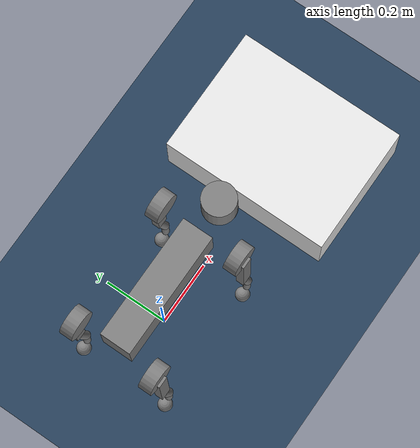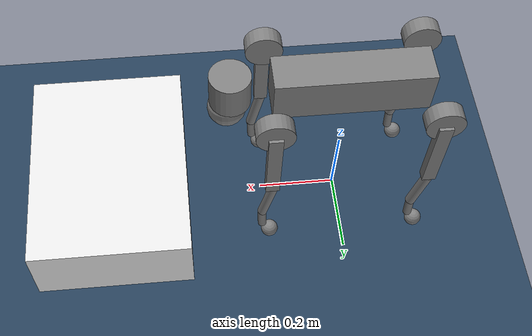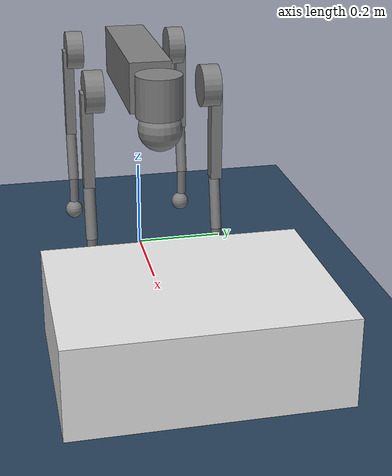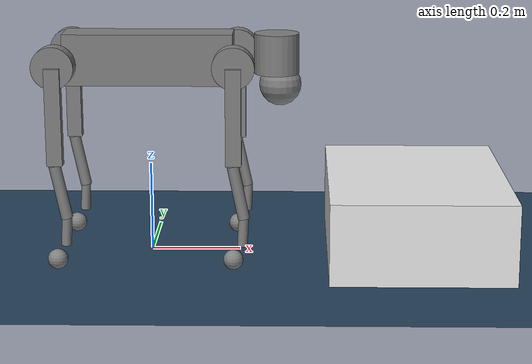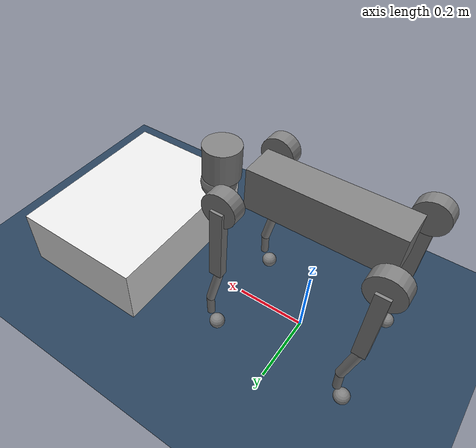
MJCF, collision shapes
<mujoco model="go2 scene">
  <compiler angle="radian" meshdir="assets/"/>

  <option impratio="100" cone="elliptic"/>

  <size nkey="1"/>

  <visual>
    <global azimuth="-130" elevation="-20"/>
    <headlight ambient="0.3 0.3 0.3" diffuse="0.6 0.6 0.6" specular="0 0 0"/>
    <rgba haze="0.15 0.25 0.35 1"/>
  </visual>

  <statistic extent="0.8" center="0 0 0.1"/>

  <default>
    <default class="go2">
      <joint armature="0.01" damping="2" frictionloss="0.2"/>
      <geom condim="1" friction="0.6" margin="0.001"/>
      <general ctrlrange="-23.7 23.7"/>
      <default class="abduction">
        <joint range="-1.0472 1.0472"/>
      </default>
      <default class="hip">
        <default class="front_hip">
          <joint range="-1.5708 3.4907"/>
        </default>
        <default class="back_hip">
          <joint range="-0.5236 4.5379"/>
        </default>
      </default>
      <default class="knee">
        <joint range="-2.7227 -0.83776"/>
        <general ctrlrange="-45.43 45.43"/>
      </default>
      <default class="visual">
        <geom type="mesh" contype="0" conaffinity="0" group="2"/>
      </default>
      <default class="collision">
        <geom group="3"/>
        <default class="foot">
          <geom size="0.022 0 0" condim="6" priority="1" friction="0.8 0.02 0.01" solimp="0.015 1 0.022"/>
        </default>
      </default>
    </default>
  </default>

  <asset>
    <texture type="skybox" builtin="gradient" rgb1="0.3 0.5 0.7" rgb2="0 0 0" width="512" height="3072"/>
    <texture type="2d" name="groundplane" builtin="checker" mark="edge" rgb1="0.2 0.3 0.4" rgb2="0.1 0.2 0.3" markrgb="0.8 0.8 0.8" width="300" height="300"/>
    <material name="metal" rgba="0.9 0.95 0.95 1"/>
    <material name="black" rgba="0 0 0 1"/>
    <material name="white"/>
    <material name="gray" rgba="0.671705 0.692426 0.77427 1"/>
    <material name="groundplane" texture="groundplane" texuniform="true" texrepeat="5 5" reflectance="0.2"/>
    <mesh name="base_0" file="base_0.obj"/>
    <mesh name="base_1" file="base_1.obj"/>
    <mesh name="base_2" file="base_2.obj"/>
    <mesh name="base_3" file="base_3.obj"/>
    <mesh name="base_4" file="base_4.obj"/>
    <mesh name="hip_0" file="hip_0.obj"/>
    <mesh name="hip_1" file="hip_1.obj"/>
    <mesh name="thigh_0" file="thigh_0.obj"/>
    <mesh name="thigh_1" file="thigh_1.obj"/>
    <mesh name="thigh_mirror_0" file="thigh_mirror_0.obj"/>
    <mesh name="thigh_mirror_1" file="thigh_mirror_1.obj"/>
    <mesh name="calf_0" file="calf_0.obj"/>
    <mesh name="calf_1" file="calf_1.obj"/>
    <mesh name="calf_mirror_0" file="calf_mirror_0.obj"/>
    <mesh name="calf_mirror_1" file="calf_mirror_1.obj"/>
    <mesh name="foot" file="foot.obj"/>
  </asset>

  <worldbody>
    <geom name="floor" size="0 0 0.05" type="plane" material="groundplane"/>
    <light pos="0 0 1.5" dir="0 0 -1" directional="true"/>
    <body name="base" childclass="go2" pos="0 0 0.445">
      <inertial pos="0.021112 0 -0.005366" quat="-0.000543471 0.713435 -0.00173769 0.700719" mass="6.921" diaginertia="0.107027 0.0980771 0.0244531"/>
      <joint type="free" limited="false" actuatorfrclimited="false" armature="0" damping="0" frictionloss="0"/>
      <geom class="visual" material="black" mesh="base_0"/>
      <geom class="visual" material="black" mesh="base_1"/>
      <geom class="visual" material="black" mesh="base_2"/>
      <geom class="visual" material="white" mesh="base_3"/>
      <geom class="visual" material="gray" mesh="base_4"/>
      <geom class="collision" size="0.1881 0.04675 0.057" type="box"/>
      <geom class="collision" size="0.05 0.045" pos="0.285 0 0.01" type="cylinder"/>
      <geom class="collision" size="0.047" pos="0.293 0 -0.06"/>
      <site name="imu" pos="-0.02557 0 0.04232"/>
      <body name="FL_hip" pos="0.1934 0.0465 0">
        <inertial pos="-0.0054 0.00194 -0.000105" quat="0.497014 0.499245 0.505462 0.498237" mass="0.678" diaginertia="0.00088403 0.000596003 0.000479967"/>
        <joint name="FL_hip_joint" class="abduction" pos="0 0 0" axis="1 0 0"/>
        <geom class="visual" material="metal" mesh="hip_0"/>
        <geom class="visual" material="gray" mesh="hip_1"/>
        <geom class="collision" size="0.046 0.02" pos="0 0.08 0" quat="0.707107 0.707107 0 0" type="cylinder"/>
        <body name="FL_thigh" pos="0 0.0955 0">
          <inertial pos="-0.00374 -0.0223 -0.0327" quat="0.829533 0.0847635 -0.0200632 0.551623" mass="1.152" diaginertia="0.00594973 0.00584149 0.000878787"/>
          <joint name="FL_thigh_joint" class="front_hip" pos="0 0 0" axis="0 1 0"/>
          <geom class="visual" material="metal" mesh="thigh_0"/>
          <geom class="visual" material="gray" mesh="thigh_1"/>
          <geom class="collision" size="0.1065 0.01225 0.017" pos="0 0 -0.1065" quat="0.707107 0 0.707107 0" type="box"/>
          <body name="FL_calf" pos="0 0 -0.213">
            <inertial pos="0.00629595 -0.000622121 -0.141417" quat="0.710672 0.00154099 -0.00450087 0.703508" mass="0.241352" diaginertia="0.0014901 0.00146356 5.31397e-05"/>
            <joint name="FL_calf_joint" class="knee" pos="0 0 0" axis="0 1 0"/>
            <geom class="visual" material="gray" mesh="calf_0"/>
            <geom class="visual" material="black" mesh="calf_1"/>
            <geom class="collision" size="0.012 0.06" pos="0.008 0 -0.06" quat="0.994493 0 -0.104807 0" type="cylinder"/>
            <geom class="collision" size="0.011 0.0325" pos="0.02 0 -0.148" quat="0.999688 0 0.0249974 0" type="cylinder"/>
            <geom class="visual" pos="0 0 -0.213" quat="1 0 0 0" material="black" mesh="foot"/>
            <geom name="FL" class="foot" pos="-0.002 0 -0.213"/>
          </body>
        </body>
      </body>
      <body name="FR_hip" pos="0.1934 -0.0465 0">
        <inertial pos="-0.0054 -0.00194 -0.000105" quat="0.498237 0.505462 0.499245 0.497014" mass="0.678" diaginertia="0.00088403 0.000596003 0.000479967"/>
        <joint name="FR_hip_joint" class="abduction" pos="0 0 0" axis="1 0 0"/>
        <geom class="visual" quat="4.63268e-05 1 0 0" material="metal" mesh="hip_0"/>
        <geom class="visual" quat="4.63268e-05 1 0 0" material="gray" mesh="hip_1"/>
        <geom class="collision" size="0.046 0.02" pos="0 -0.08 0" quat="0.707107 0.707107 0 0" type="cylinder"/>
        <body name="FR_thigh" pos="0 -0.0955 0">
          <inertial pos="-0.00374 0.0223 -0.0327" quat="0.551623 -0.0200632 0.0847635 0.829533" mass="1.152" diaginertia="0.00594973 0.00584149 0.000878787"/>
          <joint name="FR_thigh_joint" class="front_hip" pos="0 0 0" axis="0 1 0"/>
          <geom class="visual" material="metal" mesh="thigh_mirror_0"/>
          <geom class="visual" material="gray" mesh="thigh_mirror_1"/>
          <geom class="collision" size="0.1065 0.01225 0.017" pos="0 0 -0.1065" quat="0.707107 0 0.707107 0" type="box"/>
          <body name="FR_calf" pos="0 0 -0.213">
            <inertial pos="0.00629595 0.000622121 -0.141417" quat="0.703508 -0.00450087 0.00154099 0.710672" mass="0.241352" diaginertia="0.0014901 0.00146356 5.31397e-05"/>
            <joint name="FR_calf_joint" class="knee" pos="0 0 0" axis="0 1 0"/>
            <geom class="visual" material="gray" mesh="calf_mirror_0"/>
            <geom class="visual" material="black" mesh="calf_mirror_1"/>
            <geom class="collision" size="0.013 0.06" pos="0.01 0 -0.06" quat="0.995004 0 -0.0998334 0" type="cylinder"/>
            <geom class="collision" size="0.011 0.0325" pos="0.02 0 -0.148" quat="0.999688 0 0.0249974 0" type="cylinder"/>
            <geom class="visual" pos="0 0 -0.213" quat="1 0 0 0" material="black" mesh="foot"/>
            <geom name="FR" class="foot" pos="-0.002 0 -0.213"/>
          </body>
        </body>
      </body>
      <body name="RL_hip" pos="-0.1934 0.0465 0">
        <inertial pos="0.0054 0.00194 -0.000105" quat="0.505462 0.498237 0.497014 0.499245" mass="0.678" diaginertia="0.00088403 0.000596003 0.000479967"/>
        <joint name="RL_hip_joint" class="abduction" pos="0 0 0" axis="1 0 0"/>
        <geom class="visual" quat="4.63268e-05 0 1 0" material="metal" mesh="hip_0"/>
        <geom class="visual" quat="4.63268e-05 0 1 0" material="gray" mesh="hip_1"/>
        <geom class="collision" size="0.046 0.02" pos="0 0.08 0" quat="0.707107 0.707107 0 0" type="cylinder"/>
        <body name="RL_thigh" pos="0 0.0955 0">
          <inertial pos="-0.00374 -0.0223 -0.0327" quat="0.829533 0.0847635 -0.0200632 0.551623" mass="1.152" diaginertia="0.00594973 0.00584149 0.000878787"/>
          <joint name="RL_thigh_joint" class="back_hip" pos="0 0 0" axis="0 1 0"/>
          <geom class="visual" material="metal" mesh="thigh_0"/>
          <geom class="visual" material="gray" mesh="thigh_1"/>
          <geom class="collision" size="0.1065 0.01225 0.017" pos="0 0 -0.1065" quat="0.707107 0 0.707107 0" type="box"/>
          <body name="RL_calf" pos="0 0 -0.213">
            <inertial pos="0.00629595 -0.000622121 -0.141417" quat="0.710672 0.00154099 -0.00450087 0.703508" mass="0.241352" diaginertia="0.0014901 0.00146356 5.31397e-05"/>
            <joint name="RL_calf_joint" class="knee" pos="0 0 0" axis="0 1 0"/>
            <geom class="visual" material="gray" mesh="calf_0"/>
            <geom class="visual" material="black" mesh="calf_1"/>
            <geom class="collision" size="0.013 0.06" pos="0.01 0 -0.06" quat="0.995004 0 -0.0998334 0" type="cylinder"/>
            <geom class="collision" size="0.011 0.0325" pos="0.02 0 -0.148" quat="0.999688 0 0.0249974 0" type="cylinder"/>
            <geom class="visual" pos="0 0 -0.213" quat="1 0 0 0" material="black" mesh="foot"/>
            <geom name="RL" class="foot" pos="-0.002 0 -0.213"/>
          </body>
        </body>
      </body>
      <body name="RR_hip" pos="-0.1934 -0.0465 0">
        <inertial pos="0.0054 -0.00194 -0.000105" quat="0.499245 0.497014 0.498237 0.505462" mass="0.678" diaginertia="0.00088403 0.000596003 0.000479967"/>
        <joint name="RR_hip_joint" class="abduction" pos="0 0 0" axis="1 0 0"/>
        <geom class="visual" quat="2.14617e-09 4.63268e-05 4.63268e-05 -1" material="metal" mesh="hip_0"/>
        <geom class="visual" quat="2.14617e-09 4.63268e-05 4.63268e-05 -1" material="gray" mesh="hip_1"/>
        <geom class="collision" size="0.046 0.02" pos="0 -0.08 0" quat="0.707107 0.707107 0 0" type="cylinder"/>
        <body name="RR_thigh" pos="0 -0.0955 0">
          <inertial pos="-0.00374 0.0223 -0.0327" quat="0.551623 -0.0200632 0.0847635 0.829533" mass="1.152" diaginertia="0.00594973 0.00584149 0.000878787"/>
          <joint name="RR_thigh_joint" class="back_hip" pos="0 0 0" axis="0 1 0"/>
          <geom class="visual" material="metal" mesh="thigh_mirror_0"/>
          <geom class="visual" material="gray" mesh="thigh_mirror_1"/>
          <geom class="collision" size="0.1065 0.01225 0.017" pos="0 0 -0.1065" quat="0.707107 0 0.707107 0" type="box"/>
          <body name="RR_calf" pos="0 0 -0.213">
            <inertial pos="0.00629595 0.000622121 -0.141417" quat="0.703508 -0.00450087 0.00154099 0.710672" mass="0.241352" diaginertia="0.0014901 0.00146356 5.31397e-05"/>
            <joint name="RR_calf_joint" class="knee" pos="0 0 0" axis="0 1 0"/>
            <geom class="visual" material="gray" mesh="calf_mirror_0"/>
            <geom class="visual" material="black" mesh="calf_mirror_1"/>
            <geom class="collision" size="0.013 0.06" pos="0.01 0 -0.06" quat="0.995004 0 -0.0998334 0" type="cylinder"/>
            <geom class="collision" size="0.011 0.0325" pos="0.02 0 -0.148" quat="0.999688 0 0.0249974 0" type="cylinder"/>
            <geom class="visual" pos="0 0 -0.213" quat="1 0 0 0" material="black" mesh="foot"/>
            <geom name="RR" class="foot" pos="-0.002 0 -0.213"/>
          </body>
        </body>
      </body>
    </body>
    <body name="goal">
      <geom name="goal" size="0.2 0.266667 0.09" pos="0.6 0 0.09" type="box" rgba="0.9 0.9 0.9 1"/>
    </body>
  </worldbody>

  <actuator>
    <general name="FR_hip" class="abduction" joint="FR_hip_joint"/>
    <general name="FR_thigh" class="hip" joint="FR_thigh_joint"/>
    <general name="FR_calf" class="knee" joint="FR_calf_joint"/>
    <general name="FL_hip" class="abduction" joint="FL_hip_joint"/>
    <general name="FL_thigh" class="hip" joint="FL_thigh_joint"/>
    <general name="FL_calf" class="knee" joint="FL_calf_joint"/>
    <general name="RR_hip" class="abduction" joint="RR_hip_joint"/>
    <general name="RR_thigh" class="hip" joint="RR_thigh_joint"/>
    <general name="RR_calf" class="knee" joint="RR_calf_joint"/>
    <general name="RL_hip" class="abduction" joint="RL_hip_joint"/>
    <general name="RL_thigh" class="hip" joint="RL_thigh_joint"/>
    <general name="RL_calf" class="knee" joint="RL_calf_joint"/>
  </actuator>

  <keyframe>
    <key name="home" qpos="0 0 0.27 1 0 0 0 0 0.9 -1.8 0 0.9 -1.8 0 0.9 -1.8 0 0.9 -1.8" ctrl="0 0.9 -1.8 0 0.9 -1.8 0 0.9 -1.8 0 0.9 -1.8"/>
  </keyframe>
</mujoco>
